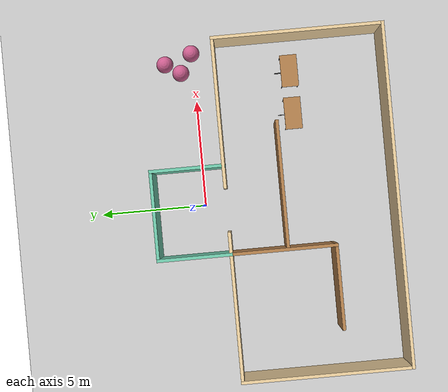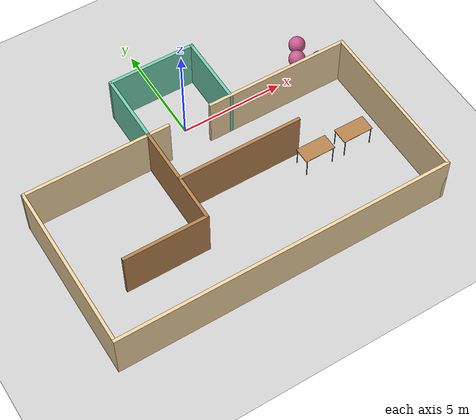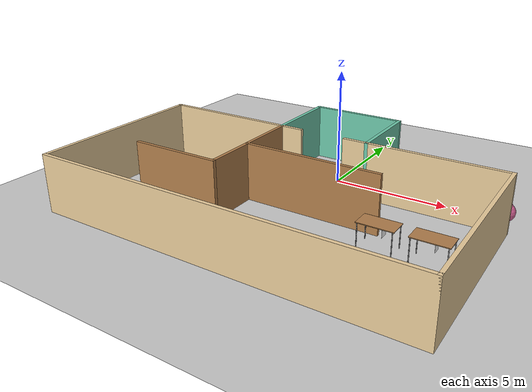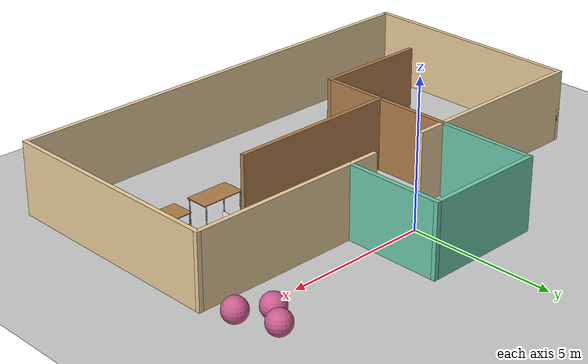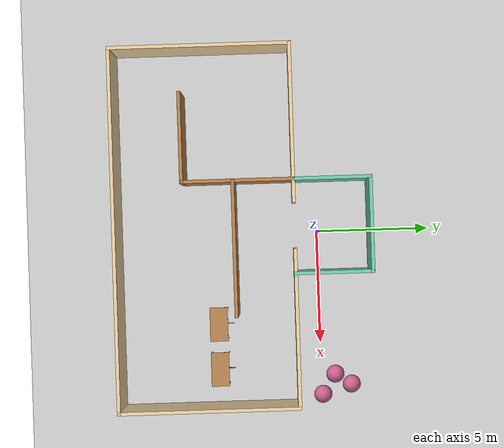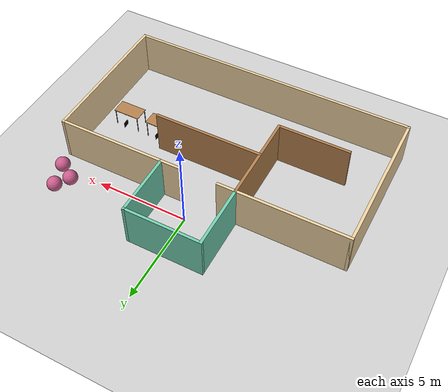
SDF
<sdf version="1.6">
 <world name="default">
  <include><uri>model://sun</uri></include>
  <include><uri>model://ground_plane</uri></include>
  <include><uri>model://sample_world</uri><static>true</static></include>
  <model name="Table1">
   <include><uri>model://table</uri><pose>6 -4.5 0 0 0 0</pose><static>true</static></include>
  </model>
  <model name="Table2">
   <include><uri>model://table</uri><pose>4 -4.5 0 0 0 0</pose><static>true</static></include>
  </model>
  <model name="Ball1">
   <include><uri>model://ball_pink</uri><pose>6.42 0.63 0.4 0 0 0</pose><static>true</static></include>
  </model>
  <model name="Ball2">
   <include><uri>model://ball_pink</uri><pose>6.89 1.35 0.4 0 0 0</pose><static>true</static></include>
  </model>
  <model name="Ball3">
   <include><uri>model://ball_pink</uri><pose>7.31 0.06 0.4 0 0 0</pose><static>true</static></include>
  </model>
  <include><uri>model://aruco_marker_1</uri><pose>6 -4 0.4 1.57 -1.57 3.14</pose><static>true</static></include>
  <include><uri>model://aruco_marker_2</uri><pose>4 -4 0.4 1.57 -1.57 3.14</pose><static>true</static></include>
 </world>
</sdf>

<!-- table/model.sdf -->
<sdf version="1.5">
  <model name="table">
    <static>true</static>
    <link name="link">
      <collision name="surface">
        <pose>0 0 1.0 0 0 0</pose>
        <geometry>
          <box>
            <size>1.5 0.8 0.03</size>
          </box>
        </geometry>
        <surface>
          <friction>
            <ode>
              <mu>0.6</mu>
              <mu2>0.6</mu2>
            </ode>
          </friction>
        </surface>
      </collision>
      <visual name="visual1">
        <pose>0 0 1.0 0 0 0</pose>
        <geometry>
          <box>
            <size>1.5 0.8 0.03</size>
          </box>
        </geometry>
        <material>
          <script>
            <uri>model://media/materials/scripts/gazebo.material</uri>
            <name>Gazebo/Wood</name>
          </script>
        </material>
      </visual>
      <collision name="front_left_leg">
        <pose>0.68 0.38 0.5 0 0 0</pose>
        <geometry>
          <cylinder>
            <radius>0.02</radius>
            <length>1.0</length>
          </cylinder>
        </geometry>
      </collision>
      <visual name="front_left_leg">
        <pose>0.68 0.38 0.5 0 0 0</pose>
        <geometry>
          <cylinder>
            <radius>0.02</radius>
            <length>1.0</length>
          </cylinder>
        </geometry>
        <material>
          <script>
            <uri>model://media/materials/scripts/gazebo.material</uri>
            <name>Gazebo/Grey</name>
          </script>
        </material>
      </visual>
      <collision name="front_right_leg">
        <pose>0.68 -0.38 0.5 0 0 0</pose>
        <geometry>
          <cylinder>
            <radius>0.02</radius>
            <length>1.0</length>
          </cylinder>
        </geometry>
      </collision>
      <visual name="front_right_leg">
        <pose>0.68 -0.38 0.5 0 0 0</pose>
        <geometry>
          <cylinder>
            <radius>0.02</radius>
            <length>1.0</length>
          </cylinder>
        </geometry>
        <material>
          <script>
            <uri>model://media/materials/scripts/gazebo.material</uri>
            <name>Gazebo/Grey</name>
          </script>
        </material>
      </visual>
      <collision name="back_right_leg">
        <pose>-0.68 -0.38 0.5 0 0 0</pose>
        <geometry>
          <cylinder>
            <radius>0.02</radius>
            <length>1.0</length>
          </cylinder>
        </geometry>
      </collision>
      <visual name="back_right_leg">
        <pose>-0.68 -0.38 0.5 0 0 0</pose>
        <geometry>
          <cylinder>
            <radius>0.02</radius>
            <length>1.0</length>
          </cylinder>
        </geometry>
        <material>
          <script>
            <uri>model://media/materials/scripts/gazebo.material</uri>
            <name>Gazebo/Grey</name>
          </script>
        </material>
      </visual>
      <collision name="back_left_leg">
        <pose>-0.68 0.38 0.5 0 0 0</pose>
        <geometry>
          <cylinder>
            <radius>0.02</radius>
            <length>1.0</length>
          </cylinder>
        </geometry>
      </collision>
      <visual name="back_left_leg">
        <pose>-0.68 0.38 0.5 0 0 0</pose>
        <geometry>
          <cylinder>
            <radius>0.02</radius>
            <length>1.0</length>
          </cylinder>
        </geometry>
        <material>
          <script>
            <uri>model://media/materials/scripts/gazebo.material</uri>
            <name>Gazebo/Grey</name>
          </script>
        </material>
      </visual>
    </link>
  </model>
</sdf>

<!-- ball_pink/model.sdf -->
<sdf version='1.6'>
  <model name='ball_pink'>
    <link name='link_0'>
      <inertial>
        <mass>1</mass>
        <inertia>
          <ixx>0.1</ixx>
          <ixy>0</ixy>
          <ixz>0</ixz>
          <iyy>0.1</iyy>
          <iyz>0</iyz>
          <izz>0.1</izz>
        </inertia>
        <pose frame=''>0 0 0 0 -0 0</pose>
      </inertial>
      <pose frame=''>-0 -0 0 0 -0 0</pose>
      <gravity>1</gravity>
      <self_collide>0</self_collide>
      <kinematic>0</kinematic>
      <enable_wind>0</enable_wind>
      <visual name='visual'>
        <pose frame=''>0 0 0 0 -0 0</pose>
        <geometry>
          <sphere>
            <radius>0.4</radius>
          </sphere>
        </geometry>
        <material>
          <lighting>1</lighting>
          <script>
            <uri>file://media/materials/scripts/gazebo.material</uri>
            <name>Gazebo/Grey</name>
          </script>
          <shader type='pixel'>
            <normal_map>__default__</normal_map>
          </shader>
          <ambient>0.745 0.314 0.502 1</ambient>
          <diffuse>0.79 0.36 0.55 1</diffuse>
          <specular>0.01 0.01 0.01 1</specular>
          <emissive>0 0 0 1</emissive>
        </material>
        <transparency>0</transparency>
        <cast_shadows>1</cast_shadows>
      </visual>
      <collision name='collision'>
        <laser_retro>0</laser_retro>
        <max_contacts>10</max_contacts>
        <pose frame=''>0 0 0 0 -0 0</pose>
        <geometry>
          <sphere>
            <radius>0.4</radius>
          </sphere>
        </geometry>
        <surface>
          <friction>
            <ode>
              <mu>1</mu>
              <mu2>1</mu2>
              <fdir1>0 0 0</fdir1>
              <slip1>0</slip1>
              <slip2>0</slip2>
            </ode>
            <torsional>
              <coefficient>1</coefficient>
              <patch_radius>0</patch_radius>
              <surface_radius>0</surface_radius>
              <use_patch_radius>1</use_patch_radius>
              <ode>
                <slip>0</slip>
              </ode>
            </torsional>
          </friction>
          <bounce>
            <restitution_coefficient>0</restitution_coefficient>
            <threshold>1e+06</threshold>
          </bounce>
          <contact>
            <collide_without_contact>0</collide_without_contact>
            <collide_without_contact_bitmask>1</collide_without_contact_bitmask>
            <collide_bitmask>1</collide_bitmask>
            <ode>
              <soft_cfm>0</soft_cfm>
              <soft_erp>0.2</soft_erp>
              <kp>1e+13</kp>
              <kd>1</kd>
              <max_vel>0.01</max_vel>
              <min_depth>0</min_depth>
            </ode>
            <bullet>
              <split_impulse>1</split_impulse>
              <split_impulse_penetration_threshold>-0.01</split_impulse_penetration_threshold>
              <soft_cfm>0</soft_cfm>
              <soft_erp>0.2</soft_erp>
              <kp>1e+13</kp>
              <kd>1</kd>
            </bullet>
          </contact>
        </surface>
      </collision>
    </link>
    <static>0</static>
    <allow_auto_disable>1</allow_auto_disable>
  </model>
</sdf>

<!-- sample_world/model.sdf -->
<sdf version='1.6'>
  <model name='sample_world'>
    <pose frame=''>-0.293153 -3.27129 0 0 -0 0</pose>
    <link name='Wall_0'>
      <collision name='Wall_0_Collision'>
        <geometry>
          <box>
            <size>16 0.15 2.5</size>
          </box>
        </geometry>
        <pose frame=''>0 0 1.25 0 -0 0</pose>
      </collision>
      <visual name='Wall_0_Visual'>
        <pose frame=''>0 0 1.25 0 -0 0</pose>
        <geometry>
          <box>
            <size>16 0.15 2.5</size>
          </box>
        </geometry>
        <material>
          <script>
            <uri>file://media/materials/scripts/gazebo.material</uri>
            <name>Gazebo/Grey</name>
          </script>
          <ambient>0.921569 0.807843 0.615686 1</ambient>
        </material>
        <meta>
          <layer>0</layer>
        </meta>
      </visual>
      <pose frame=''>0 -5.6 0 0 -0 0</pose>
    </link>
    <link name='Wall_1'>
      <collision name='Wall_1_Collision'>
        <geometry>
          <box>
            <size>8 0.15 2.5</size>
          </box>
        </geometry>
        <pose frame=''>0 0 1.25 0 -0 0</pose>
      </collision>
      <visual name='Wall_1_Visual'>
        <pose frame=''>0 0 1.25 0 -0 0</pose>
        <geometry>
          <box>
            <size>8 0.15 2.5</size>
          </box>
        </geometry>
        <material>
          <script>
            <uri>file://media/materials/scripts/gazebo.material</uri>
            <name>Gazebo/Grey</name>
          </script>
          <ambient>0.921569 0.807843 0.615686 1</ambient>
        </material>
        <meta>
          <layer>0</layer>
        </meta>
      </visual>
      <pose frame=''>7.925 -1.675 0 0 -0 1.5708</pose>
    </link>
    <link name='Wall_11'>
      <collision name='Wall_11_Collision'>
        <geometry>
          <box>
            <size>3.5 0.15 2.5</size>
          </box>
        </geometry>
        <pose frame=''>0 0 1.25 0 -0 0</pose>
      </collision>
      <visual name='Wall_11_Visual'>
        <pose frame=''>0 0 1.25 0 -0 0</pose>
        <geometry>
          <box>
            <size>3.5 0.15 2.5</size>
          </box>
        </geometry>
        <material>
          <script>
            <uri>file://media/materials/scripts/gazebo.material</uri>
            <name>Gazebo/Grey</name>
          </script>
          <ambient>0.435294 0.796078 0.67451 1</ambient>
        </material>
        <meta>
          <layer>0</layer>
        </meta>
      </visual>
      <pose frame=''>-2.025 3.925 0 0 -0 -1.5708</pose>
    </link>
    <link name='Wall_13'>
      <collision name='Wall_13_Collision'>
        <geometry>
          <box>
            <size>7 0.15 2.5</size>
          </box>
        </geometry>
        <pose frame=''>0 0 1.25 0 -0 0</pose>
      </collision>
      <visual name='Wall_13_Visual'>
        <pose frame=''>0 0 1.25 0 -0 0</pose>
        <geometry>
          <box>
            <size>7 0.15 2.5</size>
          </box>
        </geometry>
        <material>
          <script>
            <uri>file://media/materials/scripts/gazebo.material</uri>
            <name>Gazebo/Grey</name>
          </script>
          <ambient>0.921569 0.807843 0.615686 1</ambient>
        </material>
        <meta>
          <layer>0</layer>
        </meta>
      </visual>
      <pose frame=''>4.5 2.25 0 0 -0 3.14159</pose>
    </link>
    <link name='Wall_15'>
      <collision name='Wall_15_Collision'>
        <geometry>
          <box>
            <size>5 0.15 2.5</size>
          </box>
        </geometry>
        <pose frame=''>0 0 1.25 0 -0 0</pose>
      </collision>
      <visual name='Wall_15_Visual'>
        <pose frame=''>0 0 1.25 0 -0 0</pose>
        <geometry>
          <box>
            <size>5 0.15 2.5</size>
          </box>
        </geometry>
        <material>
          <script>
            <uri>file://media/materials/scripts/gazebo.material</uri>
            <name>Gazebo/Wood</name>
          </script>
          <ambient>1 1 1 1</ambient>
        </material>
        <meta>
          <layer>0</layer>
        </meta>
      </visual>
      <pose frame=''>-2.025 -0.175 0 0 -0 -1.5708</pose>
    </link>
    <link name='Wall_16'>
      <collision name='Wall_16_Collision'>
        <geometry>
          <box>
            <size>4 0.15 2.5</size>
          </box>
        </geometry>
        <pose frame=''>0 0 1.25 0 -0 0</pose>
      </collision>
      <visual name='Wall_16_Visual'>
        <pose frame=''>0 0 1.25 0 -0 0</pose>
        <geometry>
          <box>
            <size>4 0.15 2.5</size>
          </box>
        </geometry>
        <material>
          <script>
            <uri>file://media/materials/scripts/gazebo.material</uri>
            <name>Gazebo/Wood</name>
          </script>
          <ambient>1 1 1 1</ambient>
        </material>
        <meta>
          <layer>0</layer>
        </meta>
      </visual>
      <pose frame=''>-3.95 -2.6 0 0 -0 3.14159</pose>
    </link>
    <link name='Wall_19'>
      <collision name='Wall_19_Collision'>
        <geometry>
          <box>
            <size>6 0.15 2.5</size>
          </box>
        </geometry>
        <pose frame=''>0 0 1.25 0 -0 0</pose>
      </collision>
      <visual name='Wall_19_Visual'>
        <pose frame=''>0 0 1.25 0 -0 0</pose>
        <geometry>
          <box>
            <size>6 0.15 2.5</size>
          </box>
        </geometry>
        <material>
          <script>
            <uri>file://media/materials/scripts/gazebo.material</uri>
            <name>Gazebo/Wood</name>
          </script>
          <ambient>1 1 1 1</ambient>
        </material>
        <meta>
          <layer>0</layer>
        </meta>
      </visual>
      <pose frame=''>0.931413 -0.383398 0 0 -0 0</pose>
    </link>
    <link name='Wall_3'>
      <collision name='Wall_3_Collision'>
        <geometry>
          <box>
            <size>8 0.15 2.5</size>
          </box>
        </geometry>
        <pose frame=''>0 0 1.25 0 -0 0</pose>
      </collision>
      <visual name='Wall_3_Visual'>
        <pose frame=''>0 0 1.25 0 -0 0</pose>
        <geometry>
          <box>
            <size>8 0.15 2.5</size>
          </box>
        </geometry>
        <material>
          <script>
            <uri>file://media/materials/scripts/gazebo.material</uri>
            <name>Gazebo/Grey</name>
          </script>
          <ambient>0.921569 0.807843 0.615686 1</ambient>
        </material>
        <meta>
          <layer>0</layer>
        </meta>
      </visual>
      <pose frame=''>-7.925 -1.675 0 0 -0 -1.5708</pose>
    </link>
    <link name='Wall_5'>
      <collision name='Wall_5_Collision'>
        <geometry>
          <box>
            <size>7 0.15 2.5</size>
          </box>
        </geometry>
        <pose frame=''>0 0 1.25 0 -0 0</pose>
      </collision>
      <visual name='Wall_5_Visual'>
        <pose frame=''>0 0 1.25 0 -0 0</pose>
        <geometry>
          <box>
            <size>7 0.15 2.5</size>
          </box>
        </geometry>
        <material>
          <script>
            <uri>file://media/materials/scripts/gazebo.material</uri>
            <name>Gazebo/Grey</name>
          </script>
          <ambient>0.921569 0.807843 0.615686 1</ambient>
        </material>
        <meta>
          <layer>0</layer>
        </meta>
      </visual>
      <pose frame=''>-4.5 2.25 0 0 -0 0</pose>
    </link>
    <link name='Wall_8'>
      <collision name='Wall_8_Collision'>
        <geometry>
          <box>
            <size>3.5 0.15 2.5</size>
          </box>
        </geometry>
        <pose frame=''>0 0 1.25 0 -0 0</pose>
      </collision>
      <visual name='Wall_8_Visual'>
        <pose frame=''>0 0 1.25 0 -0 0</pose>
        <geometry>
          <box>
            <size>3.5 0.15 2.5</size>
          </box>
        </geometry>
        <material>
          <script>
            <uri>file://media/materials/scripts/gazebo.material</uri>
            <name>Gazebo/Grey</name>
          </script>
          <ambient>0.435294 0.796078 0.67451 1</ambient>
        </material>
        <meta>
          <layer>0</layer>
        </meta>
      </visual>
      <pose frame=''>2.075 3.925 0 0 -0 1.5708</pose>
    </link>
    <link name='Wall_9'>
      <collision name='Wall_9_Collision'>
        <geometry>
          <box>
            <size>4.25 0.15 2.5</size>
          </box>
        </geometry>
        <pose frame=''>0 0 1.25 0 -0 0</pose>
      </collision>
      <visual name='Wall_9_Visual'>
        <pose frame=''>0 0 1.25 0 -0 0</pose>
        <geometry>
          <box>
            <size>4.25 0.15 2.5</size>
          </box>
        </geometry>
        <material>
          <script>
            <uri>file://media/materials/scripts/gazebo.material</uri>
            <name>Gazebo/Grey</name>
          </script>
          <ambient>0.435294 0.796078 0.67451 1</ambient>
        </material>
        <meta>
          <layer>0</layer>
        </meta>
      </visual>
      <pose frame=''>0.025 5.6 0 0 -0 3.14159</pose>
    </link>
    <static>1</static>
  </model>
</sdf>

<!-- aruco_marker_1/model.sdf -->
<sdf version="1.9">
  <model name="aruco_marker_1">
    <static>true</static>

    <link name="link">
      <visual name="front">
        <pose>0 0 0 0 0 0</pose>
        <geometry>
          <box>
            <size>0.35 0.002 0.35</size>
          </box>
        </geometry>

        <material>
          <ambient>1 1 1 1</ambient>
          <diffuse>1 1 1 1</diffuse>
          <specular>0.1 0.1 0.1 1</specular>
          <emissive>0 0 0 1</emissive>

          <pbr>
            <metal>
              <albedo_map>
                model://aruco/aruco_marker_1/materials/textures/marker_1.png
              </albedo_map>
              <emissive_map>
                model://aruco/aruco_marker_1/materials/textures/marker_1.png
              </emissive_map>
            </metal>
          </pbr>
        </material>
      </visual>

      <visual name="back">
        <pose>0 -0.002 0 0 0 3.1416</pose>
        <geometry>
          <box>
            <size>0.35 0.002 0.35</size>
          </box>
        </geometry>
        <material>
          <ambient>0 0 0 1</ambient>
          <diffuse>0 0 0 1</diffuse>
        </material>
      </visual>

    </link>

  </model>
</sdf>

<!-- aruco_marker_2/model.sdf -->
<sdf version="1.9">
  <model name="aruco_marker_2">
    <static>true</static>

    <link name="link">
      <visual name="front">
        <pose>0 0 0 0 0 0</pose>
        <geometry>
          <box>
            <size>0.35 0.002 0.35</size>
          </box>
        </geometry>

        <material>
          <ambient>1 1 1 1</ambient>
          <diffuse>1 1 1 1</diffuse>
          <specular>0.1 0.1 0.1 1</specular>
          <emissive>0 0 0 1</emissive>

          <pbr>
            <metal>
              <albedo_map>
                model://aruco/aruco_marker_2/materials/textures/marker_2.png
              </albedo_map>
              <emissive_map>
                model://aruco/aruco_marker_2/materials/textures/marker_2.png
              </emissive_map>
            </metal>
          </pbr>
        </material>
      </visual>

      <visual name="back">
        <pose>0 -0.002 0 0 0 3.1416</pose>
        <geometry>
          <box>
            <size>0.35 0.002 0.35</size>
          </box>
        </geometry>
        <material>
          <ambient>0 0 0 1</ambient>
          <diffuse>0 0 0 1</diffuse>
        </material>
      </visual>

    </link>

  </model>
</sdf>
